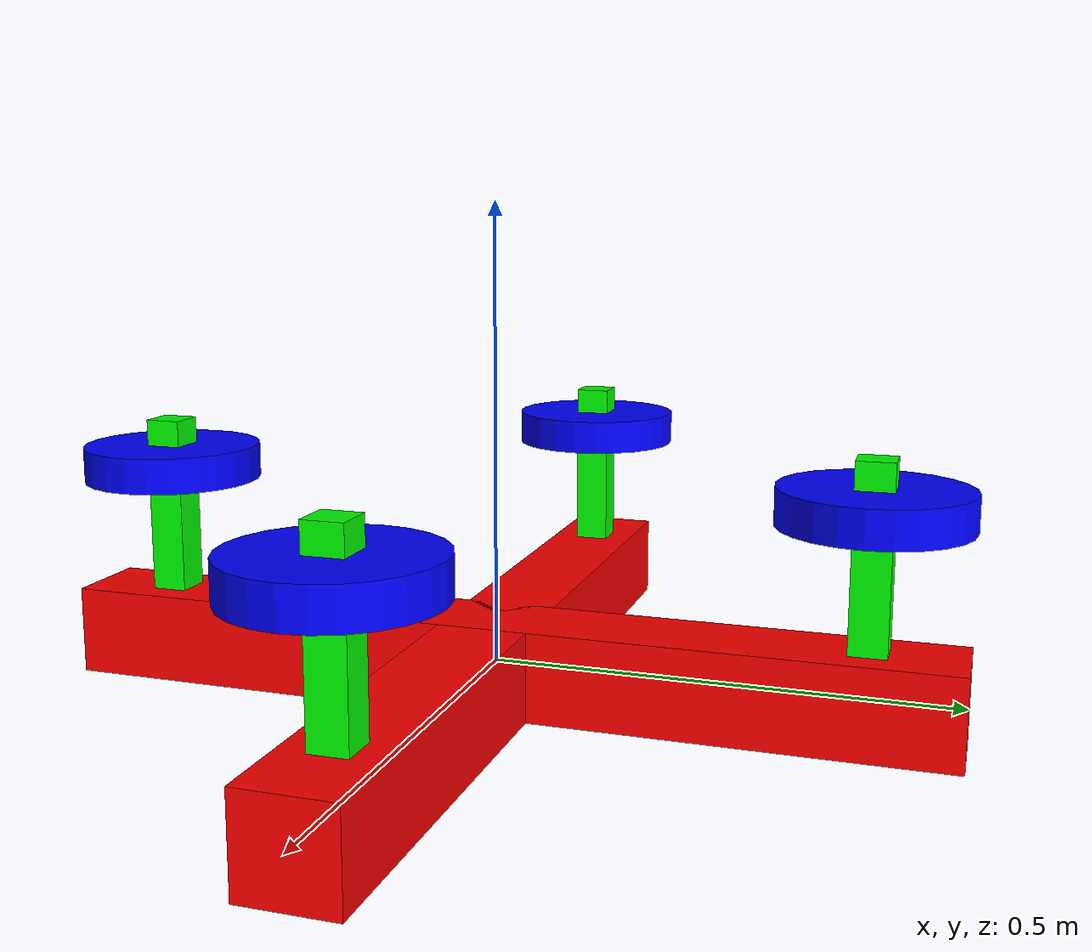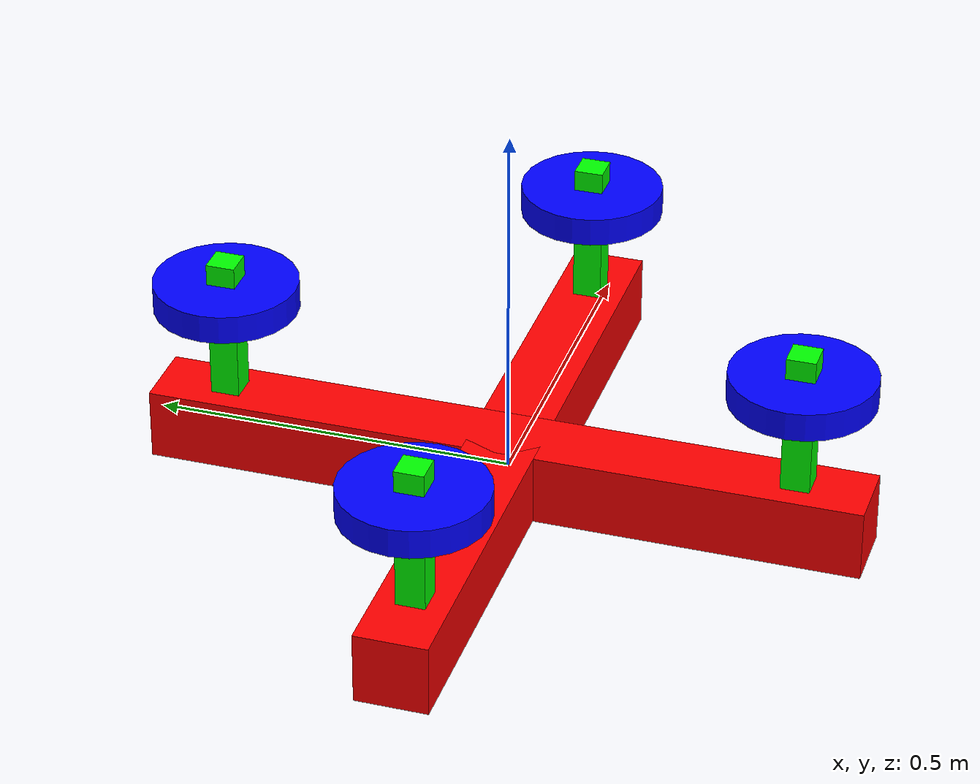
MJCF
<mujoco>
	<option gravity="0 0 -9.81" timestep='0.0001'/>
	<compiler eulerseq ="zyx"/>
	<worldbody>
        <light diffuse=".5 .5 .5" pos="0 0 2" dir="0 0 -1"/>
		<body pos="0 0 0">
			<joint type="slide" axis="1 0 0"/>
			<joint type="slide" axis="0 1 0"/>
			<joint type="slide" axis="0 0 1"/>
			<joint type="hinge" axis="1 0 0"/>
			<joint type="hinge" axis="0 1 0"/>
			<joint type="hinge" axis="0 0 1"/>

			<geom type="box" size=".5 .05 .05" rgba="1 0 0 1" />
			<geom type="box" size=".05 .5 .05" rgba="1 0 0 1" />

			<site name='gyro' size='0.001'/>
		  	<inertial pos='0 0 0' mass='1' diaginertia="0.1 0.1 0.1"/>

			<geom type="box" size=".15 .02 .02" rgba="0 1 0 1" pos = "-0.4 0 0.1" euler="0 90 0" mass = "0"/>
			<geom type="cylinder" size="0.1 0.02" rgba="0 0 1 1" pos = "-0.4 0 0.2" euler="0 0 0" mass = "0"/>

			<geom type="box" size=".15 .02 .02" rgba="0 1 0 1" pos = "0.4 0 0.1" euler="0 90 0" mass = "0"/>
			<geom type="cylinder" size="0.1 0.02" rgba="0 0 1 1" pos = "0.4 0 0.2" euler="0 0 0" mass = "0"/>

			<geom type="box" size=".15 .02 .02" rgba="0 1 0 1" pos = "0 -0.4 0.1" euler="0 90 0" mass = "0"/>
			<geom type="cylinder" size="0.1 0.02" rgba="0 0 1 1" pos = "0 -0.4 0.2" euler="0 0 0" mass = "0"/>

			<geom type="cylinder" size="0.1 0.02" rgba="0 0 1 1" pos = "0 0.4 0.2" euler="0 0 0" mass = "0"/>
			<geom type="box" size=".15 .02 .02" rgba="0 1 0 1" pos = "0 0.4 0.1" euler="0 90 0" mass = "0"/>

		</body>
	</worldbody>
</mujoco>
